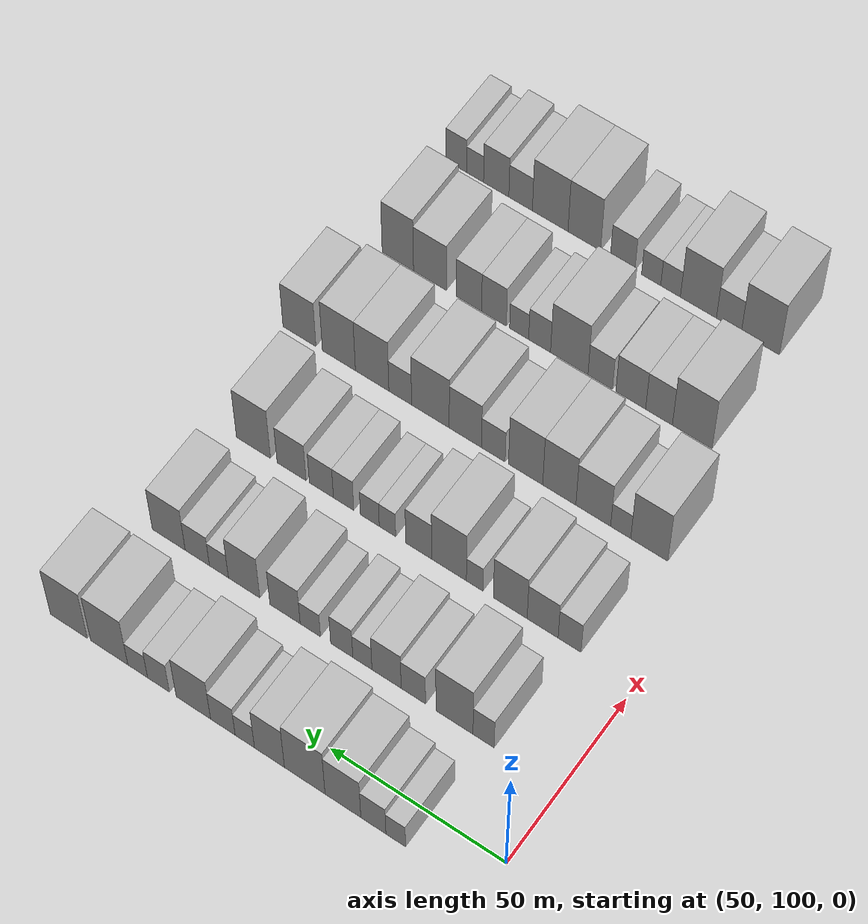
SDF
<sdf version="1.6">
 <world name="default">
  <model name="building_73">
   <static>1</static>
   <pose>50.0000 124.2805 0 0.000000 0.000000 0.000000</pose>
   <link name="link">
    <pose>0 0 6.00 0 0 0</pose>
    <collision name="collision"><geometry><box><size>20.0000 5.5427 12.0000</size></box></geometry></collision>
    <visual name="visual">
     <cast_shadows>0</cast_shadows>
     <geometry><box><size>20.0000 5.5427 12.0000</size></box></geometry>
     <material>
      <script>
       <uri>model://HANNAS_wall/materials/scripts</uri>
       <uri>model://HANNAS_wall/materials/textures</uri>
       <name>vrc/HANNAS_wall</name>
      </script>
     </material>
    </visual>
   </link>
  </model>
  <model name="building_74">
   <static>1</static>
   <pose>50.0000 130.6122 0 0.000000 0.000000 0.000000</pose>
   <link name="link">
    <pose>0 0 7.50 0 0 0</pose>
    <collision name="collision"><geometry><box><size>20.0000 7.1207 15.0000</size></box></geometry></collision>
    <visual name="visual">
     <cast_shadows>0</cast_shadows>
     <geometry><box><size>20.0000 7.1207 15.0000</size></box></geometry>
     <material>
      <script>
       <uri>model://HANNAS_wall/materials/scripts</uri>
       <uri>model://HANNAS_wall/materials/textures</uri>
       <name>vrc/HANNAS_wall</name>
      </script>
     </material>
    </visual>
   </link>
  </model>
  <model name="building_75">
   <static>1</static>
   <pose>50.0000 139.2745 0 0.000000 0.000000 0.000000</pose>
   <link name="link">
    <pose>0 0 10.50 0 0 0</pose>
    <collision name="collision"><geometry><box><size>20.0000 10.2038 21.0000</size></box></geometry></collision>
    <visual name="visual">
     <cast_shadows>0</cast_shadows>
     <geometry><box><size>20.0000 10.2038 21.0000</size></box></geometry>
     <material>
      <script>
       <uri>model://HANNAS_wall/materials/scripts</uri>
       <uri>model://HANNAS_wall/materials/textures</uri>
       <name>vrc/HANNAS_wall</name>
      </script>
     </material>
    </visual>
   </link>
  </model>
  <model name="building_76">
   <static>1</static>
   <pose>50.0000 150.2162 0 0.000000 0.000000 0.000000</pose>
   <link name="link">
    <pose>0 0 12.00 0 0 0</pose>
    <collision name="collision"><geometry><box><size>20.0000 11.6796 24.0000</size></box></geometry></collision>
    <visual name="visual">
     <cast_shadows>0</cast_shadows>
     <geometry><box><size>20.0000 11.6796 24.0000</size></box></geometry>
     <material>
      <script>
       <uri>model://HANNAS_wall/materials/scripts</uri>
       <uri>model://HANNAS_wall/materials/textures</uri>
       <name>vrc/HANNAS_wall</name>
      </script>
     </material>
    </visual>
   </link>
  </model>
  <model name="building_77">
   <static>1</static>
   <pose>50.0000 160.4000 0 0.000000 0.000000 0.000000</pose>
   <link name="link">
    <pose>0 0 10.50 0 0 0</pose>
    <collision name="collision"><geometry><box><size>20.0000 8.6879 21.0000</size></box></geometry></collision>
    <visual name="visual">
     <cast_shadows>0</cast_shadows>
     <geometry><box><size>20.0000 8.6879 21.0000</size></box></geometry>
     <material>
      <script>
       <uri>model://HANNAS_wall/materials/scripts</uri>
       <uri>model://HANNAS_wall/materials/textures</uri>
       <name>vrc/HANNAS_wall</name>
      </script>
     </material>
    </visual>
   </link>
  </model>
  <model name="building_78">
   <static>1</static>
   <pose>50.0000 167.5558 0 0.000000 0.000000 0.000000</pose>
   <link name="link">
    <pose>0 0 6.00 0 0 0</pose>
    <collision name="collision"><geometry><box><size>20.0000 5.6237 12.0000</size></box></geometry></collision>
    <visual name="visual">
     <cast_shadows>0</cast_shadows>
     <geometry><box><size>20.0000 5.6237 12.0000</size></box></geometry>
     <material>
      <script>
       <uri>model://HANNAS_wall/materials/scripts</uri>
       <uri>model://HANNAS_wall/materials/textures</uri>
       <name>vrc/HANNAS_wall</name>
      </script>
     </material>
    </visual>
   </link>
  </model>
  <model name="building_79">
   <static>1</static>
   <pose>50.0000 173.9644 0 0.000000 0.000000 0.000000</pose>
   <link name="link">
    <pose>0 0 7.50 0 0 0</pose>
    <collision name="collision"><geometry><box><size>20.0000 7.1937 15.0000</size></box></geometry></collision>
    <visual name="visual">
     <cast_shadows>0</cast_shadows>
     <geometry><box><size>20.0000 7.1937 15.0000</size></box></geometry>
     <material>
      <script>
       <uri>model://HANNAS_wall/materials/scripts</uri>
       <uri>model://HANNAS_wall/materials/textures</uri>
       <name>vrc/HANNAS_wall</name>
      </script>
     </material>
    </visual>
   </link>
  </model>
  <model name="building_80">
   <static>1</static>
   <pose>50.0000 182.6173 0 0.000000 0.000000 0.000000</pose>
   <link name="link">
    <pose>0 0 10.50 0 0 0</pose>
    <collision name="collision"><geometry><box><size>20.0000 10.1120 21.0000</size></box></geometry></collision>
    <visual name="visual">
     <cast_shadows>0</cast_shadows>
     <geometry><box><size>20.0000 10.1120 21.0000</size></box></geometry>
     <material>
      <script>
       <uri>model://HANNAS_wall/materials/scripts</uri>
       <uri>model://HANNAS_wall/materials/textures</uri>
       <name>vrc/HANNAS_wall</name>
      </script>
     </material>
    </visual>
   </link>
  </model>
  <model name="building_81">
   <static>1</static>
   <pose>50.0000 192.9164 0 0.000000 0.000000 0.000000</pose>
   <link name="link">
    <pose>0 0 7.50 0 0 0</pose>
    <collision name="collision"><geometry><box><size>20.0000 6.4863 15.0000</size></box></geometry></collision>
    <visual name="visual">
     <cast_shadows>0</cast_shadows>
     <geometry><box><size>20.0000 6.4863 15.0000</size></box></geometry>
     <material>
      <script>
       <uri>model://HANNAS_wall/materials/scripts</uri>
       <uri>model://HANNAS_wall/materials/textures</uri>
       <name>vrc/HANNAS_wall</name>
      </script>
     </material>
    </visual>
   </link>
  </model>
  <model name="building_82">
   <static>1</static>
   <pose>50.0000 199.0909 0 0.000000 0.000000 0.000000</pose>
   <link name="link">
    <pose>0 0 6.00 0 0 0</pose>
    <collision name="collision"><geometry><box><size>20.0000 5.8626 12.0000</size></box></geometry></collision>
    <visual name="visual">
     <cast_shadows>0</cast_shadows>
     <geometry><box><size>20.0000 5.8626 12.0000</size></box></geometry>
     <material>
      <script>
       <uri>model://HANNAS_wall/materials/scripts</uri>
       <uri>model://HANNAS_wall/materials/textures</uri>
       <name>vrc/HANNAS_wall</name>
      </script>
     </material>
    </visual>
   </link>
  </model>
  <model name="building_83">
   <static>1</static>
   <pose>50.0000 207.5886 0 0.000000 0.000000 0.000000</pose>
   <link name="link">
    <pose>0 0 12.00 0 0 0</pose>
    <collision name="collision"><geometry><box><size>20.0000 11.1327 24.0000</size></box></geometry></collision>
    <visual name="visual">
     <cast_shadows>0</cast_shadows>
     <geometry><box><size>20.0000 11.1327 24.0000</size></box></geometry>
     <material>
      <script>
       <uri>model://HANNAS_wall/materials/scripts</uri>
       <uri>model://HANNAS_wall/materials/textures</uri>
       <name>vrc/HANNAS_wall</name>
      </script>
     </material>
    </visual>
   </link>
  </model>
  <model name="building_84">
   <static>1</static>
   <pose>50.0000 219.7090 0 0.000000 0.000000 0.000000</pose>
   <link name="link">
    <pose>0 0 12.00 0 0 0</pose>
    <collision name="collision"><geometry><box><size>20.0000 11.1082 24.0000</size></box></geometry></collision>
    <visual name="visual">
     <cast_shadows>0</cast_shadows>
     <geometry><box><size>20.0000 11.1082 24.0000</size></box></geometry>
     <material>
      <script>
       <uri>model://HANNAS_wall/materials/scripts</uri>
       <uri>model://HANNAS_wall/materials/textures</uri>
       <name>vrc/HANNAS_wall</name>
      </script>
     </material>
    </visual>
   </link>
  </model>
  <model name="building_194">
   <static>1</static>
   <pose>82.0000 121.6576 0 0.000000 0.000000 0.000000</pose>
   <link name="link">
    <pose>0 0 7.50 0 0 0</pose>
    <collision name="collision"><geometry><box><size>20.0000 6.0177 15.0000</size></box></geometry></collision>
    <visual name="visual">
     <cast_shadows>0</cast_shadows>
     <geometry><box><size>20.0000 6.0177 15.0000</size></box></geometry>
     <material>
      <script>
       <uri>model://HANNAS_wall/materials/scripts</uri>
       <uri>model://HANNAS_wall/materials/textures</uri>
       <name>vrc/HANNAS_wall</name>
      </script>
     </material>
    </visual>
   </link>
  </model>
  <model name="building_195">
   <static>1</static>
   <pose>82.0000 129.9507 0 0.000000 0.000000 0.000000</pose>
   <link name="link">
    <pose>0 0 12.00 0 0 0</pose>
    <collision name="collision"><geometry><box><size>20.0000 10.5685 24.0000</size></box></geometry></collision>
    <visual name="visual">
     <cast_shadows>0</cast_shadows>
     <geometry><box><size>20.0000 10.5685 24.0000</size></box></geometry>
     <material>
      <script>
       <uri>model://HANNAS_wall/materials/scripts</uri>
       <uri>model://HANNAS_wall/materials/textures</uri>
       <name>vrc/HANNAS_wall</name>
      </script>
     </material>
    </visual>
   </link>
  </model>
  <model name="building_196">
   <static>1</static>
   <pose>82.0000 141.7511 0 0.000000 0.000000 0.000000</pose>
   <link name="link">
    <pose>0 0 7.50 0 0 0</pose>
    <collision name="collision"><geometry><box><size>20.0000 7.0324 15.0000</size></box></geometry></collision>
    <visual name="visual">
     <cast_shadows>0</cast_shadows>
     <geometry><box><size>20.0000 7.0324 15.0000</size></box></geometry>
     <material>
      <script>
       <uri>model://HANNAS_wall/materials/scripts</uri>
       <uri>model://HANNAS_wall/materials/textures</uri>
       <name>vrc/HANNAS_wall</name>
      </script>
     </material>
    </visual>
   </link>
  </model>
  <model name="building_197">
   <static>1</static>
   <pose>82.0000 149.4992 0 0.000000 0.000000 0.000000</pose>
   <link name="link">
    <pose>0 0 9.00 0 0 0</pose>
    <collision name="collision"><geometry><box><size>20.0000 8.4637 18.0000</size></box></geometry></collision>
    <visual name="visual">
     <cast_shadows>0</cast_shadows>
     <geometry><box><size>20.0000 8.4637 18.0000</size></box></geometry>
     <material>
      <script>
       <uri>model://HANNAS_wall/materials/scripts</uri>
       <uri>model://HANNAS_wall/materials/textures</uri>
       <name>vrc/HANNAS_wall</name>
      </script>
     </material>
    </visual>
   </link>
  </model>
  <model name="building_198">
   <static>1</static>
   <pose>82.0000 156.5133 0 0.000000 0.000000 0.000000</pose>
   <link name="link">
    <pose>0 0 6.00 0 0 0</pose>
    <collision name="collision"><geometry><box><size>20.0000 5.5646 12.0000</size></box></geometry></collision>
    <visual name="visual">
     <cast_shadows>0</cast_shadows>
     <geometry><box><size>20.0000 5.5646 12.0000</size></box></geometry>
     <material>
      <script>
       <uri>model://HANNAS_wall/materials/scripts</uri>
       <uri>model://HANNAS_wall/materials/textures</uri>
       <name>vrc/HANNAS_wall</name>
      </script>
     </material>
    </visual>
   </link>
  </model>
  <model name="building_199">
   <static>1</static>
   <pose>82.0000 162.5313 0 0.000000 0.000000 0.000000</pose>
   <link name="link">
    <pose>0 0 7.50 0 0 0</pose>
    <collision name="collision"><geometry><box><size>20.0000 6.4714 15.0000</size></box></geometry></collision>
    <visual name="visual">
     <cast_shadows>0</cast_shadows>
     <geometry><box><size>20.0000 6.4714 15.0000</size></box></geometry>
     <material>
      <script>
       <uri>model://HANNAS_wall/materials/scripts</uri>
       <uri>model://HANNAS_wall/materials/textures</uri>
       <name>vrc/HANNAS_wall</name>
      </script>
     </material>
    </visual>
   </link>
  </model>
  <model name="building_200">
   <static>1</static>
   <pose>82.0000 171.7510 0 0.000000 0.000000 0.000000</pose>
   <link name="link">
    <pose>0 0 6.00 0 0 0</pose>
    <collision name="collision"><geometry><box><size>20.0000 5.9680 12.0000</size></box></geometry></collision>
    <visual name="visual">
     <cast_shadows>0</cast_shadows>
     <geometry><box><size>20.0000 5.9680 12.0000</size></box></geometry>
     <material>
      <script>
       <uri>model://HANNAS_wall/materials/scripts</uri>
       <uri>model://HANNAS_wall/materials/textures</uri>
       <name>vrc/HANNAS_wall</name>
      </script>
     </material>
    </visual>
   </link>
  </model>
  <model name="building_201">
   <static>1</static>
   <pose>82.0000 179.2104 0 0.000000 0.000000 0.000000</pose>
   <link name="link">
    <pose>0 0 9.00 0 0 0</pose>
    <collision name="collision"><geometry><box><size>20.0000 8.9507 18.0000</size></box></geometry></collision>
    <visual name="visual">
     <cast_shadows>0</cast_shadows>
     <geometry><box><size>20.0000 8.9507 18.0000</size></box></geometry>
     <material>
      <script>
       <uri>model://HANNAS_wall/materials/scripts</uri>
       <uri>model://HANNAS_wall/materials/textures</uri>
       <name>vrc/HANNAS_wall</name>
      </script>
     </material>
    </visual>
   </link>
  </model>
  <model name="building_202">
   <static>1</static>
   <pose>82.0000 191.3778 0 0.000000 0.000000 0.000000</pose>
   <link name="link">
    <pose>0 0 10.50 0 0 0</pose>
    <collision name="collision"><geometry><box><size>20.0000 9.3843 21.0000</size></box></geometry></collision>
    <visual name="visual">
     <cast_shadows>0</cast_shadows>
     <geometry><box><size>20.0000 9.3843 21.0000</size></box></geometry>
     <material>
      <script>
       <uri>model://HANNAS_wall/materials/scripts</uri>
       <uri>model://HANNAS_wall/materials/textures</uri>
       <name>vrc/HANNAS_wall</name>
      </script>
     </material>
    </visual>
   </link>
  </model>
  <model name="building_203">
   <static>1</static>
   <pose>82.0000 198.9171 0 0.000000 0.000000 0.000000</pose>
   <link name="link">
    <pose>0 0 6.00 0 0 0</pose>
    <collision name="collision"><geometry><box><size>20.0000 5.6943 12.0000</size></box></geometry></collision>
    <visual name="visual">
     <cast_shadows>0</cast_shadows>
     <geometry><box><size>20.0000 5.6943 12.0000</size></box></geometry>
     <material>
      <script>
       <uri>model://HANNAS_wall/materials/scripts</uri>
       <uri>model://HANNAS_wall/materials/textures</uri>
       <name>vrc/HANNAS_wall</name>
      </script>
     </material>
    </visual>
   </link>
  </model>
  <model name="building_204">
   <static>1</static>
   <pose>82.0000 205.4117 0 0.000000 0.000000 0.000000</pose>
   <link name="link">
    <pose>0 0 7.50 0 0 0</pose>
    <collision name="collision"><geometry><box><size>20.0000 7.2947 15.0000</size></box></geometry></collision>
    <visual name="visual">
     <cast_shadows>0</cast_shadows>
     <geometry><box><size>20.0000 7.2947 15.0000</size></box></geometry>
     <material>
      <script>
       <uri>model://HANNAS_wall/materials/scripts</uri>
       <uri>model://HANNAS_wall/materials/textures</uri>
       <name>vrc/HANNAS_wall</name>
      </script>
     </material>
    </visual>
   </link>
  </model>
  <model name="building_205">
   <static>1</static>
   <pose>82.0000 214.0354 0 0.000000 0.000000 0.000000</pose>
   <link name="link">
    <pose>0 0 10.50 0 0 0</pose>
    <collision name="collision"><geometry><box><size>20.0000 9.9528 21.0000</size></box></geometry></collision>
    <visual name="visual">
     <cast_shadows>0</cast_shadows>
     <geometry><box><size>20.0000 9.9528 21.0000</size></box></geometry>
     <material>
      <script>
       <uri>model://HANNAS_wall/materials/scripts</uri>
       <uri>model://HANNAS_wall/materials/textures</uri>
       <name>vrc/HANNAS_wall</name>
      </script>
     </material>
    </visual>
   </link>
  </model>
  <model name="building_309">
   <static>1</static>
   <pose>114.0000 118.7740 0 0.000000 0.000000 0.000000</pose>
   <link name="link">
    <pose>0 0 7.50 0 0 0</pose>
    <collision name="collision"><geometry><box><size>20.0000 6.5591 15.0000</size></box></geometry></collision>
    <visual name="visual">
     <cast_shadows>0</cast_shadows>
     <geometry><box><size>20.0000 6.5591 15.0000</size></box></geometry>
     <material>
      <script>
       <uri>model://HANNAS_wall/materials/scripts</uri>
       <uri>model://HANNAS_wall/materials/textures</uri>
       <name>vrc/HANNAS_wall</name>
      </script>
     </material>
    </visual>
   </link>
  </model>
  <model name="building_310">
   <static>1</static>
   <pose>114.0000 126.5097 0 0.000000 0.000000 0.000000</pose>
   <link name="link">
    <pose>0 0 9.00 0 0 0</pose>
    <collision name="collision"><geometry><box><size>20.0000 8.9122 18.0000</size></box></geometry></collision>
    <visual name="visual">
     <cast_shadows>0</cast_shadows>
     <geometry><box><size>20.0000 8.9122 18.0000</size></box></geometry>
     <material>
      <script>
       <uri>model://HANNAS_wall/materials/scripts</uri>
       <uri>model://HANNAS_wall/materials/textures</uri>
       <name>vrc/HANNAS_wall</name>
      </script>
     </material>
    </visual>
   </link>
  </model>
  <model name="building_311">
   <static>1</static>
   <pose>114.0000 135.8602 0 0.000000 0.000000 0.000000</pose>
   <link name="link">
    <pose>0 0 10.50 0 0 0</pose>
    <collision name="collision"><geometry><box><size>20.0000 9.7888 21.0000</size></box></geometry></collision>
    <visual name="visual">
     <cast_shadows>0</cast_shadows>
     <geometry><box><size>20.0000 9.7888 21.0000</size></box></geometry>
     <material>
      <script>
       <uri>model://HANNAS_wall/materials/scripts</uri>
       <uri>model://HANNAS_wall/materials/textures</uri>
       <name>vrc/HANNAS_wall</name>
      </script>
     </material>
    </visual>
   </link>
  </model>
  <model name="building_312">
   <static>1</static>
   <pose>114.0000 146.1800 0 0.000000 0.000000 0.000000</pose>
   <link name="link">
    <pose>0 0 6.00 0 0 0</pose>
    <collision name="collision"><geometry><box><size>20.0000 4.8510 12.0000</size></box></geometry></collision>
    <visual name="visual">
     <cast_shadows>0</cast_shadows>
     <geometry><box><size>20.0000 4.8510 12.0000</size></box></geometry>
     <material>
      <script>
       <uri>model://HANNAS_wall/materials/scripts</uri>
       <uri>model://HANNAS_wall/materials/textures</uri>
       <name>vrc/HANNAS_wall</name>
      </script>
     </material>
    </visual>
   </link>
  </model>
  <model name="building_313">
   <static>1</static>
   <pose>114.0000 153.6883 0 0.000000 0.000000 0.000000</pose>
   <link name="link">
    <pose>0 0 12.00 0 0 0</pose>
    <collision name="collision"><geometry><box><size>20.0000 10.1656 24.0000</size></box></geometry></collision>
    <visual name="visual">
     <cast_shadows>0</cast_shadows>
     <geometry><box><size>20.0000 10.1656 24.0000</size></box></geometry>
     <material>
      <script>
       <uri>model://HANNAS_wall/materials/scripts</uri>
       <uri>model://HANNAS_wall/materials/textures</uri>
       <name>vrc/HANNAS_wall</name>
      </script>
     </material>
    </visual>
   </link>
  </model>
  <model name="building_314">
   <static>1</static>
   <pose>114.0000 162.5801 0 0.000000 0.000000 0.000000</pose>
   <link name="link">
    <pose>0 0 9.00 0 0 0</pose>
    <collision name="collision"><geometry><box><size>20.0000 7.6180 18.0000</size></box></geometry></collision>
    <visual name="visual">
     <cast_shadows>0</cast_shadows>
     <geometry><box><size>20.0000 7.6180 18.0000</size></box></geometry>
     <material>
      <script>
       <uri>model://HANNAS_wall/materials/scripts</uri>
       <uri>model://HANNAS_wall/materials/textures</uri>
       <name>vrc/HANNAS_wall</name>
      </script>
     </material>
    </visual>
   </link>
  </model>
  <model name="building_315">
   <static>1</static>
   <pose>114.0000 171.8278 0 0.000000 0.000000 0.000000</pose>
   <link name="link">
    <pose>0 0 6.00 0 0 0</pose>
    <collision name="collision"><geometry><box><size>20.0000 4.8774 12.0000</size></box></geometry></collision>
    <visual name="visual">
     <cast_shadows>0</cast_shadows>
     <geometry><box><size>20.0000 4.8774 12.0000</size></box></geometry>
     <material>
      <script>
       <uri>model://HANNAS_wall/materials/scripts</uri>
       <uri>model://HANNAS_wall/materials/textures</uri>
       <name>vrc/HANNAS_wall</name>
      </script>
     </material>
    </visual>
   </link>
  </model>
  <model name="building_316">
   <static>1</static>
   <pose>114.0000 177.0669 0 0.000000 0.000000 0.000000</pose>
   <link name="link">
    <pose>0 0 6.00 0 0 0</pose>
    <collision name="collision"><geometry><box><size>20.0000 5.6009 12.0000</size></box></geometry></collision>
    <visual name="visual">
     <cast_shadows>0</cast_shadows>
     <geometry><box><size>20.0000 5.6009 12.0000</size></box></geometry>
     <material>
      <script>
       <uri>model://HANNAS_wall/materials/scripts</uri>
       <uri>model://HANNAS_wall/materials/textures</uri>
       <name>vrc/HANNAS_wall</name>
      </script>
     </material>
    </visual>
   </link>
  </model>
  <model name="building_317">
   <static>1</static>
   <pose>114.0000 184.9123 0 0.000000 0.000000 0.000000</pose>
   <link name="link">
    <pose>0 0 7.50 0 0 0</pose>
    <collision name="collision"><geometry><box><size>20.0000 6.0898 15.0000</size></box></geometry></collision>
    <visual name="visual">
     <cast_shadows>0</cast_shadows>
     <geometry><box><size>20.0000 6.0898 15.0000</size></box></geometry>
     <material>
      <script>
       <uri>model://HANNAS_wall/materials/scripts</uri>
       <uri>model://HANNAS_wall/materials/textures</uri>
       <name>vrc/HANNAS_wall</name>
      </script>
     </material>
    </visual>
   </link>
  </model>
  <model name="building_318">
   <static>1</static>
   <pose>114.0000 191.5661 0 0.000000 0.000000 0.000000</pose>
   <link name="link">
    <pose>0 0 7.50 0 0 0</pose>
    <collision name="collision"><geometry><box><size>20.0000 7.2177 15.0000</size></box></geometry></collision>
    <visual name="visual">
     <cast_shadows>0</cast_shadows>
     <geometry><box><size>20.0000 7.2177 15.0000</size></box></geometry>
     <material>
      <script>
       <uri>model://HANNAS_wall/materials/scripts</uri>
       <uri>model://HANNAS_wall/materials/textures</uri>
       <name>vrc/HANNAS_wall</name>
      </script>
     </material>
    </visual>
   </link>
  </model>
  <model name="building_319">
   <static>1</static>
   <pose>114.0000 200.5656 0 0.000000 0.000000 0.000000</pose>
   <link name="link">
    <pose>0 0 9.00 0 0 0</pose>
    <collision name="collision"><geometry><box><size>20.0000 8.7813 18.0000</size></box></geometry></collision>
    <visual name="visual">
     <cast_shadows>0</cast_shadows>
     <geometry><box><size>20.0000 8.7813 18.0000</size></box></geometry>
     <material>
      <script>
       <uri>model://HANNAS_wall/materials/scripts</uri>
       <uri>model://HANNAS_wall/materials/textures</uri>
       <name>vrc/HANNAS_wall</name>
      </script>
     </material>
    </visual>
   </link>
  </model>
  <model name="building_320">
   <static>1</static>
   <pose>114.0000 212.1352 0 0.000000 0.000000 0.000000</pose>
   <link name="link">
    <pose>0 0 12.00 0 0 0</pose>
    <collision name="collision"><geometry><box><size>20.0000 10.3579 24.0000</size></box></geometry></collision>
    <visual name="visual">
     <cast_shadows>0</cast_shadows>
     <geometry><box><size>20.0000 10.3579 24.0000</size></box></geometry>
     <material>
      <script>
       <uri>model://HANNAS_wall/materials/scripts</uri>
       <uri>model://HANNAS_wall/materials/textures</uri>
       <name>vrc/HANNAS_wall</name>
      </script>
     </material>
    </visual>
   </link>
  </model>
  <model name="building_425">
   <static>1</static>
   <pose>146.0000 116.9882 0 0.000000 0.000000 0.000000</pose>
   <link name="link">
    <pose>0 0 12.00 0 0 0</pose>
    <collision name="collision"><geometry><box><size>20.0000 10.6949 24.0000</size></box></geometry></collision>
    <visual name="visual">
     <cast_shadows>0</cast_shadows>
     <geometry><box><size>20.0000 10.6949 24.0000</size></box></geometry>
     <material>
      <script>
       <uri>model://HANNAS_wall/materials/scripts</uri>
       <uri>model://HANNAS_wall/materials/textures</uri>
       <name>vrc/HANNAS_wall</name>
      </script>
     </material>
    </visual>
   </link>
  </model>
  <model name="building_426">
   <static>1</static>
   <pose>146.0000 125.2487 0 0.000000 0.000000 0.000000</pose>
   <link name="link">
    <pose>0 0 6.00 0 0 0</pose>
    <collision name="collision"><geometry><box><size>20.0000 5.8263 12.0000</size></box></geometry></collision>
    <visual name="visual">
     <cast_shadows>0</cast_shadows>
     <geometry><box><size>20.0000 5.8263 12.0000</size></box></geometry>
     <material>
      <script>
       <uri>model://HANNAS_wall/materials/scripts</uri>
       <uri>model://HANNAS_wall/materials/textures</uri>
       <name>vrc/HANNAS_wall</name>
      </script>
     </material>
    </visual>
   </link>
  </model>
  <model name="building_427">
   <static>1</static>
   <pose>146.0000 133.2221 0 0.000000 0.000000 0.000000</pose>
   <link name="link">
    <pose>0 0 10.50 0 0 0</pose>
    <collision name="collision"><geometry><box><size>20.0000 10.1205 21.0000</size></box></geometry></collision>
    <visual name="visual">
     <cast_shadows>0</cast_shadows>
     <geometry><box><size>20.0000 10.1205 21.0000</size></box></geometry>
     <material>
      <script>
       <uri>model://HANNAS_wall/materials/scripts</uri>
       <uri>model://HANNAS_wall/materials/textures</uri>
       <name>vrc/HANNAS_wall</name>
      </script>
     </material>
    </visual>
   </link>
  </model>
  <model name="building_428">
   <static>1</static>
   <pose>146.0000 143.1509 0 0.000000 0.000000 0.000000</pose>
   <link name="link">
    <pose>0 0 12.00 0 0 0</pose>
    <collision name="collision"><geometry><box><size>20.0000 9.7371 24.0000</size></box></geometry></collision>
    <visual name="visual">
     <cast_shadows>0</cast_shadows>
     <geometry><box><size>20.0000 9.7371 24.0000</size></box></geometry>
     <material>
      <script>
       <uri>model://HANNAS_wall/materials/scripts</uri>
       <uri>model://HANNAS_wall/materials/textures</uri>
       <name>vrc/HANNAS_wall</name>
      </script>
     </material>
    </visual>
   </link>
  </model>
  <model name="building_429">
   <static>1</static>
   <pose>146.0000 153.0728 0 0.000000 0.000000 0.000000</pose>
   <link name="link">
    <pose>0 0 12.00 0 0 0</pose>
    <collision name="collision"><geometry><box><size>20.0000 10.1068 24.0000</size></box></geometry></collision>
    <visual name="visual">
     <cast_shadows>0</cast_shadows>
     <geometry><box><size>20.0000 10.1068 24.0000</size></box></geometry>
     <material>
      <script>
       <uri>model://HANNAS_wall/materials/scripts</uri>
       <uri>model://HANNAS_wall/materials/textures</uri>
       <name>vrc/HANNAS_wall</name>
      </script>
     </material>
    </visual>
   </link>
  </model>
  <model name="building_430">
   <static>1</static>
   <pose>146.0000 162.6437 0 0.000000 0.000000 0.000000</pose>
   <link name="link">
    <pose>0 0 7.50 0 0 0</pose>
    <collision name="collision"><geometry><box><size>20.0000 7.0350 15.0000</size></box></geometry></collision>
    <visual name="visual">
     <cast_shadows>0</cast_shadows>
     <geometry><box><size>20.0000 7.0350 15.0000</size></box></geometry>
     <material>
      <script>
       <uri>model://HANNAS_wall/materials/scripts</uri>
       <uri>model://HANNAS_wall/materials/textures</uri>
       <name>vrc/HANNAS_wall</name>
      </script>
     </material>
    </visual>
   </link>
  </model>
  <model name="building_431">
   <static>1</static>
   <pose>146.0000 170.9771 0 0.000000 0.000000 0.000000</pose>
   <link name="link">
    <pose>0 0 10.50 0 0 0</pose>
    <collision name="collision"><geometry><box><size>20.0000 9.6318 21.0000</size></box></geometry></collision>
    <visual name="visual">
     <cast_shadows>0</cast_shadows>
     <geometry><box><size>20.0000 9.6318 21.0000</size></box></geometry>
     <material>
      <script>
       <uri>model://HANNAS_wall/materials/scripts</uri>
       <uri>model://HANNAS_wall/materials/textures</uri>
       <name>vrc/HANNAS_wall</name>
      </script>
     </material>
    </visual>
   </link>
  </model>
  <model name="building_432">
   <static>1</static>
   <pose>146.0000 181.4555 0 0.000000 0.000000 0.000000</pose>
   <link name="link">
    <pose>0 0 12.00 0 0 0</pose>
    <collision name="collision"><geometry><box><size>20.0000 11.3250 24.0000</size></box></geometry></collision>
    <visual name="visual">
     <cast_shadows>0</cast_shadows>
     <geometry><box><size>20.0000 11.3250 24.0000</size></box></geometry>
     <material>
      <script>
       <uri>model://HANNAS_wall/materials/scripts</uri>
       <uri>model://HANNAS_wall/materials/textures</uri>
       <name>vrc/HANNAS_wall</name>
      </script>
     </material>
    </visual>
   </link>
  </model>
  <model name="building_433">
   <static>1</static>
   <pose>146.0000 190.5572 0 0.000000 0.000000 0.000000</pose>
   <link name="link">
    <pose>0 0 7.50 0 0 0</pose>
    <collision name="collision"><geometry><box><size>20.0000 6.8784 15.0000</size></box></geometry></collision>
    <visual name="visual">
     <cast_shadows>0</cast_shadows>
     <geometry><box><size>20.0000 6.8784 15.0000</size></box></geometry>
     <material>
      <script>
       <uri>model://HANNAS_wall/materials/scripts</uri>
       <uri>model://HANNAS_wall/materials/textures</uri>
       <name>vrc/HANNAS_wall</name>
      </script>
     </material>
    </visual>
   </link>
  </model>
  <model name="building_434">
   <static>1</static>
   <pose>146.0000 199.0968 0 0.000000 0.000000 0.000000</pose>
   <link name="link">
    <pose>0 0 12.00 0 0 0</pose>
    <collision name="collision"><geometry><box><size>20.0000 10.2008 24.0000</size></box></geometry></collision>
    <visual name="visual">
     <cast_shadows>0</cast_shadows>
     <geometry><box><size>20.0000 10.2008 24.0000</size></box></geometry>
     <material>
      <script>
       <uri>model://HANNAS_wall/materials/scripts</uri>
       <uri>model://HANNAS_wall/materials/textures</uri>
       <name>vrc/HANNAS_wall</name>
      </script>
     </material>
    </visual>
   </link>
  </model>
  <model name="building_435">
   <static>1</static>
   <pose>146.0000 209.2600 0 0.000000 0.000000 0.000000</pose>
   <link name="link">
    <pose>0 0 12.00 0 0 0</pose>
    <collision name="collision"><geometry><box><size>20.0000 10.1255 24.0000</size></box></geometry></collision>
    <visual name="visual">
     <cast_shadows>0</cast_shadows>
     <geometry><box><size>20.0000 10.1255 24.0000</size></box></geometry>
     <material>
      <script>
       <uri>model://HANNAS_wall/materials/scripts</uri>
       <uri>model://HANNAS_wall/materials/textures</uri>
       <name>vrc/HANNAS_wall</name>
      </script>
     </material>
    </visual>
   </link>
  </model>
  <model name="building_436">
   <static>1</static>
   <pose>146.0000 221.4040 0 0.000000 0.000000 0.000000</pose>
   <link name="link">
    <pose>0 0 10.50 0 0 0</pose>
    <collision name="collision"><geometry><box><size>20.0000 10.1625 21.0000</size></box></geometry></collision>
    <visual name="visual">
     <cast_shadows>0</cast_shadows>
     <geometry><box><size>20.0000 10.1625 21.0000</size></box></geometry>
     <material>
      <script>
       <uri>model://HANNAS_wall/materials/scripts</uri>
       <uri>model://HANNAS_wall/materials/textures</uri>
       <name>vrc/HANNAS_wall</name>
      </script>
     </material>
    </visual>
   </link>
  </model>
  <model name="building_536">
   <static>1</static>
   <pose>178.0000 125.2067 0 0.000000 0.000000 0.000000</pose>
   <link name="link">
    <pose>0 0 12.00 0 0 0</pose>
    <collision name="collision"><geometry><box><size>20.0000 11.5927 24.0000</size></box></geometry></collision>
    <visual name="visual">
     <cast_shadows>0</cast_shadows>
     <geometry><box><size>20.0000 11.5927 24.0000</size></box></geometry>
     <material>
      <script>
       <uri>model://HANNAS_wall/materials/scripts</uri>
       <uri>model://HANNAS_wall/materials/textures</uri>
       <name>vrc/HANNAS_wall</name>
      </script>
     </material>
    </visual>
   </link>
  </model>
  <model name="building_537">
   <static>1</static>
   <pose>178.0000 134.9385 0 0.000000 0.000000 0.000000</pose>
   <link name="link">
    <pose>0 0 9.00 0 0 0</pose>
    <collision name="collision"><geometry><box><size>20.0000 7.8708 18.0000</size></box></geometry></collision>
    <visual name="visual">
     <cast_shadows>0</cast_shadows>
     <geometry><box><size>20.0000 7.8708 18.0000</size></box></geometry>
     <material>
      <script>
       <uri>model://HANNAS_wall/materials/scripts</uri>
       <uri>model://HANNAS_wall/materials/textures</uri>
       <name>vrc/HANNAS_wall</name>
      </script>
     </material>
    </visual>
   </link>
  </model>
  <model name="building_538">
   <static>1</static>
   <pose>178.0000 143.2813 0 0.000000 0.000000 0.000000</pose>
   <link name="link">
    <pose>0 0 9.00 0 0 0</pose>
    <collision name="collision"><geometry><box><size>20.0000 8.8148 18.0000</size></box></geometry></collision>
    <visual name="visual">
     <cast_shadows>0</cast_shadows>
     <geometry><box><size>20.0000 8.8148 18.0000</size></box></geometry>
     <material>
      <script>
       <uri>model://HANNAS_wall/materials/scripts</uri>
       <uri>model://HANNAS_wall/materials/textures</uri>
       <name>vrc/HANNAS_wall</name>
      </script>
     </material>
    </visual>
   </link>
  </model>
  <model name="building_539">
   <static>1</static>
   <pose>178.0000 152.3341 0 0.000000 0.000000 0.000000</pose>
   <link name="link">
    <pose>0 0 7.50 0 0 0</pose>
    <collision name="collision"><geometry><box><size>20.0000 7.2908 15.0000</size></box></geometry></collision>
    <visual name="visual">
     <cast_shadows>0</cast_shadows>
     <geometry><box><size>20.0000 7.2908 15.0000</size></box></geometry>
     <material>
      <script>
       <uri>model://HANNAS_wall/materials/scripts</uri>
       <uri>model://HANNAS_wall/materials/textures</uri>
       <name>vrc/HANNAS_wall</name>
      </script>
     </material>
    </visual>
   </link>
  </model>
  <model name="building_540">
   <static>1</static>
   <pose>178.0000 161.5870 0 0.000000 0.000000 0.000000</pose>
   <link name="link">
    <pose>0 0 12.00 0 0 0</pose>
    <collision name="collision"><geometry><box><size>20.0000 11.2151 24.0000</size></box></geometry></collision>
    <visual name="visual">
     <cast_shadows>0</cast_shadows>
     <geometry><box><size>20.0000 11.2151 24.0000</size></box></geometry>
     <material>
      <script>
       <uri>model://HANNAS_wall/materials/scripts</uri>
       <uri>model://HANNAS_wall/materials/textures</uri>
       <name>vrc/HANNAS_wall</name>
      </script>
     </material>
    </visual>
   </link>
  </model>
  <model name="building_541">
   <static>1</static>
   <pose>178.0000 170.4953 0 0.000000 0.000000 0.000000</pose>
   <link name="link">
    <pose>0 0 7.50 0 0 0</pose>
    <collision name="collision"><geometry><box><size>20.0000 6.6015 15.0000</size></box></geometry></collision>
    <visual name="visual">
     <cast_shadows>0</cast_shadows>
     <geometry><box><size>20.0000 6.6015 15.0000</size></box></geometry>
     <material>
      <script>
       <uri>model://HANNAS_wall/materials/scripts</uri>
       <uri>model://HANNAS_wall/materials/textures</uri>
       <name>vrc/HANNAS_wall</name>
      </script>
     </material>
    </visual>
   </link>
  </model>
  <model name="building_542">
   <static>1</static>
   <pose>178.0000 176.6754 0 0.000000 0.000000 0.000000</pose>
   <link name="link">
    <pose>0 0 6.00 0 0 0</pose>
    <collision name="collision"><geometry><box><size>20.0000 5.7586 12.0000</size></box></geometry></collision>
    <visual name="visual">
     <cast_shadows>0</cast_shadows>
     <geometry><box><size>20.0000 5.7586 12.0000</size></box></geometry>
     <material>
      <script>
       <uri>model://HANNAS_wall/materials/scripts</uri>
       <uri>model://HANNAS_wall/materials/textures</uri>
       <name>vrc/HANNAS_wall</name>
      </script>
     </material>
    </visual>
   </link>
  </model>
  <model name="building_543">
   <static>1</static>
   <pose>178.0000 184.3162 0 0.000000 0.000000 0.000000</pose>
   <link name="link">
    <pose>0 0 9.00 0 0 0</pose>
    <collision name="collision"><geometry><box><size>20.0000 7.5231 18.0000</size></box></geometry></collision>
    <visual name="visual">
     <cast_shadows>0</cast_shadows>
     <geometry><box><size>20.0000 7.5231 18.0000</size></box></geometry>
     <material>
      <script>
       <uri>model://HANNAS_wall/materials/scripts</uri>
       <uri>model://HANNAS_wall/materials/textures</uri>
       <name>vrc/HANNAS_wall</name>
      </script>
     </material>
    </visual>
   </link>
  </model>
  <model name="building_544">
   <static>1</static>
   <pose>178.0000 191.9668 0 0.000000 0.000000 0.000000</pose>
   <link name="link">
    <pose>0 0 9.00 0 0 0</pose>
    <collision name="collision"><geometry><box><size>20.0000 7.7781 18.0000</size></box></geometry></collision>
    <visual name="visual">
     <cast_shadows>0</cast_shadows>
     <geometry><box><size>20.0000 7.7781 18.0000</size></box></geometry>
     <material>
      <script>
       <uri>model://HANNAS_wall/materials/scripts</uri>
       <uri>model://HANNAS_wall/materials/textures</uri>
       <name>vrc/HANNAS_wall</name>
      </script>
     </material>
    </visual>
   </link>
  </model>
  <model name="building_545">
   <static>1</static>
   <pose>178.0000 203.9081 0 0.000000 0.000000 0.000000</pose>
   <link name="link">
    <pose>0 0 10.50 0 0 0</pose>
    <collision name="collision"><geometry><box><size>20.0000 10.1045 21.0000</size></box></geometry></collision>
    <visual name="visual">
     <cast_shadows>0</cast_shadows>
     <geometry><box><size>20.0000 10.1045 21.0000</size></box></geometry>
     <material>
      <script>
       <uri>model://HANNAS_wall/materials/scripts</uri>
       <uri>model://HANNAS_wall/materials/textures</uri>
       <name>vrc/HANNAS_wall</name>
      </script>
     </material>
    </visual>
   </link>
  </model>
  <model name="building_546">
   <static>1</static>
   <pose>178.0000 213.8079 0 0.000000 0.000000 0.000000</pose>
   <link name="link">
    <pose>0 0 12.00 0 0 0</pose>
    <collision name="collision"><geometry><box><size>20.0000 9.6951 24.0000</size></box></geometry></collision>
    <visual name="visual">
     <cast_shadows>0</cast_shadows>
     <geometry><box><size>20.0000 9.6951 24.0000</size></box></geometry>
     <material>
      <script>
       <uri>model://HANNAS_wall/materials/scripts</uri>
       <uri>model://HANNAS_wall/materials/textures</uri>
       <name>vrc/HANNAS_wall</name>
      </script>
     </material>
    </visual>
   </link>
  </model>
  <model name="building_664">
   <static>1</static>
   <pose>210.0000 125.4941 0 0.000000 0.000000 0.000000</pose>
   <link name="link">
    <pose>0 0 12.00 0 0 0</pose>
    <collision name="collision"><geometry><box><size>20.0000 11.2619 24.0000</size></box></geometry></collision>
    <visual name="visual">
     <cast_shadows>0</cast_shadows>
     <geometry><box><size>20.0000 11.2619 24.0000</size></box></geometry>
     <material>
      <script>
       <uri>model://HANNAS_wall/materials/scripts</uri>
       <uri>model://HANNAS_wall/materials/textures</uri>
       <name>vrc/HANNAS_wall</name>
      </script>
     </material>
    </visual>
   </link>
  </model>
  <model name="building_665">
   <static>1</static>
   <pose>210.0000 134.8189 0 0.000000 0.000000 0.000000</pose>
   <link name="link">
    <pose>0 0 7.50 0 0 0</pose>
    <collision name="collision"><geometry><box><size>20.0000 7.3876 15.0000</size></box></geometry></collision>
    <visual name="visual">
     <cast_shadows>0</cast_shadows>
     <geometry><box><size>20.0000 7.3876 15.0000</size></box></geometry>
     <material>
      <script>
       <uri>model://HANNAS_wall/materials/scripts</uri>
       <uri>model://HANNAS_wall/materials/textures</uri>
       <name>vrc/HANNAS_wall</name>
      </script>
     </material>
    </visual>
   </link>
  </model>
  <model name="building_666">
   <static>1</static>
   <pose>210.0000 143.8877 0 0.000000 0.000000 0.000000</pose>
   <link name="link">
    <pose>0 0 12.00 0 0 0</pose>
    <collision name="collision"><geometry><box><size>20.0000 10.7501 24.0000</size></box></geometry></collision>
    <visual name="visual">
     <cast_shadows>0</cast_shadows>
     <geometry><box><size>20.0000 10.7501 24.0000</size></box></geometry>
     <material>
      <script>
       <uri>model://HANNAS_wall/materials/scripts</uri>
       <uri>model://HANNAS_wall/materials/textures</uri>
       <name>vrc/HANNAS_wall</name>
      </script>
     </material>
    </visual>
   </link>
  </model>
  <model name="building_667">
   <static>1</static>
   <pose>210.0000 152.2091 0 0.000000 0.000000 0.000000</pose>
   <link name="link">
    <pose>0 0 6.00 0 0 0</pose>
    <collision name="collision"><geometry><box><size>20.0000 5.8927 12.0000</size></box></geometry></collision>
    <visual name="visual">
     <cast_shadows>0</cast_shadows>
     <geometry><box><size>20.0000 5.8927 12.0000</size></box></geometry>
     <material>
      <script>
       <uri>model://HANNAS_wall/materials/scripts</uri>
       <uri>model://HANNAS_wall/materials/textures</uri>
       <name>vrc/HANNAS_wall</name>
      </script>
     </material>
    </visual>
   </link>
  </model>
  <model name="building_668">
   <static>1</static>
   <pose>210.0000 158.0466 0 0.000000 0.000000 0.000000</pose>
   <link name="link">
    <pose>0 0 6.00 0 0 0</pose>
    <collision name="collision"><geometry><box><size>20.0000 5.7824 12.0000</size></box></geometry></collision>
    <visual name="visual">
     <cast_shadows>0</cast_shadows>
     <geometry><box><size>20.0000 5.7824 12.0000</size></box></geometry>
     <material>
      <script>
       <uri>model://HANNAS_wall/materials/scripts</uri>
       <uri>model://HANNAS_wall/materials/textures</uri>
       <name>vrc/HANNAS_wall</name>
      </script>
     </material>
    </visual>
   </link>
  </model>
  <model name="building_669">
   <static>1</static>
   <pose>210.0000 166.6550 0 0.000000 0.000000 0.000000</pose>
   <link name="link">
    <pose>0 0 7.50 0 0 0</pose>
    <collision name="collision"><geometry><box><size>20.0000 7.4344 15.0000</size></box></geometry></collision>
    <visual name="visual">
     <cast_shadows>0</cast_shadows>
     <geometry><box><size>20.0000 7.4344 15.0000</size></box></geometry>
     <material>
      <script>
       <uri>model://HANNAS_wall/materials/scripts</uri>
       <uri>model://HANNAS_wall/materials/textures</uri>
       <name>vrc/HANNAS_wall</name>
      </script>
     </material>
    </visual>
   </link>
  </model>
  <model name="building_670">
   <static>1</static>
   <pose>210.0000 178.3472 0 0.000000 0.000000 0.000000</pose>
   <link name="link">
    <pose>0 0 12.00 0 0 0</pose>
    <collision name="collision"><geometry><box><size>20.0000 9.9500 24.0000</size></box></geometry></collision>
    <visual name="visual">
     <cast_shadows>0</cast_shadows>
     <geometry><box><size>20.0000 9.9500 24.0000</size></box></geometry>
     <material>
      <script>
       <uri>model://HANNAS_wall/materials/scripts</uri>
       <uri>model://HANNAS_wall/materials/textures</uri>
       <name>vrc/HANNAS_wall</name>
      </script>
     </material>
    </visual>
   </link>
  </model>
  <model name="building_671">
   <static>1</static>
   <pose>210.0000 188.7987 0 0.000000 0.000000 0.000000</pose>
   <link name="link">
    <pose>0 0 12.00 0 0 0</pose>
    <collision name="collision"><geometry><box><size>20.0000 10.9529 24.0000</size></box></geometry></collision>
    <visual name="visual">
     <cast_shadows>0</cast_shadows>
     <geometry><box><size>20.0000 10.9529 24.0000</size></box></geometry>
     <material>
      <script>
       <uri>model://HANNAS_wall/materials/scripts</uri>
       <uri>model://HANNAS_wall/materials/textures</uri>
       <name>vrc/HANNAS_wall</name>
      </script>
     </material>
    </visual>
   </link>
  </model>
  <model name="building_672">
   <static>1</static>
   <pose>210.0000 197.9179 0 0.000000 0.000000 0.000000</pose>
   <link name="link">
    <pose>0 0 7.50 0 0 0</pose>
    <collision name="collision"><geometry><box><size>20.0000 7.2856 15.0000</size></box></geometry></collision>
    <visual name="visual">
     <cast_shadows>0</cast_shadows>
     <geometry><box><size>20.0000 7.2856 15.0000</size></box></geometry>
     <material>
      <script>
       <uri>model://HANNAS_wall/materials/scripts</uri>
       <uri>model://HANNAS_wall/materials/textures</uri>
       <name>vrc/HANNAS_wall</name>
      </script>
     </material>
    </visual>
   </link>
  </model>
  <model name="building_673">
   <static>1</static>
   <pose>210.0000 205.4837 0 0.000000 0.000000 0.000000</pose>
   <link name="link">
    <pose>0 0 9.00 0 0 0</pose>
    <collision name="collision"><geometry><box><size>20.0000 7.8459 18.0000</size></box></geometry></collision>
    <visual name="visual">
     <cast_shadows>0</cast_shadows>
     <geometry><box><size>20.0000 7.8459 18.0000</size></box></geometry>
     <material>
      <script>
       <uri>model://HANNAS_wall/materials/scripts</uri>
       <uri>model://HANNAS_wall/materials/textures</uri>
       <name>vrc/HANNAS_wall</name>
      </script>
     </material>
    </visual>
   </link>
  </model>
  <model name="building_674">
   <static>1</static>
   <pose>210.0000 212.0230 0 0.000000 0.000000 0.000000</pose>
   <link name="link">
    <pose>0 0 6.00 0 0 0</pose>
    <collision name="collision"><geometry><box><size>20.0000 5.2327 12.0000</size></box></geometry></collision>
    <visual name="visual">
     <cast_shadows>0</cast_shadows>
     <geometry><box><size>20.0000 5.2327 12.0000</size></box></geometry>
     <material>
      <script>
       <uri>model://HANNAS_wall/materials/scripts</uri>
       <uri>model://HANNAS_wall/materials/textures</uri>
       <name>vrc/HANNAS_wall</name>
      </script>
     </material>
    </visual>
   </link>
  </model>
  <model name="building_675">
   <static>1</static>
   <pose>210.0000 217.8892 0 0.000000 0.000000 0.000000</pose>
   <link name="link">
    <pose>0 0 7.50 0 0 0</pose>
    <collision name="collision"><geometry><box><size>20.0000 6.4997 15.0000</size></box></geometry></collision>
    <visual name="visual">
     <cast_shadows>0</cast_shadows>
     <geometry><box><size>20.0000 6.4997 15.0000</size></box></geometry>
     <material>
      <script>
       <uri>model://HANNAS_wall/materials/scripts</uri>
       <uri>model://HANNAS_wall/materials/textures</uri>
       <name>vrc/HANNAS_wall</name>
      </script>
     </material>
    </visual>
   </link>
  </model>
 </world>
</sdf>
